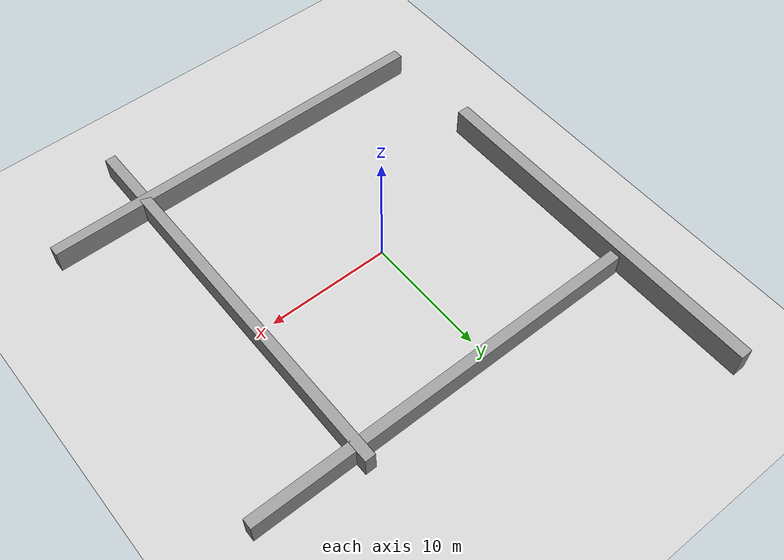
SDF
<sdf version="1.7">
 <world name="default">
  <light name="sun" type="directional">
   <pose>0 0 10 0 -0 0</pose>
   <diffuse>0.8 0.8 0.8 1</diffuse>
   <specular>0.2 0.2 0.2 1</specular>
   <attenuation>
    <range>1000</range>
    <constant>0.9</constant>
    <linear>0.01</linear>
    <quadratic>0.001</quadratic>
   </attenuation>
   <direction>-0.5 0.1 -0.9</direction>
   <spot><inner_angle>0</inner_angle><outer_angle>0</outer_angle><falloff>0</falloff></spot>
  </light>
  <model name="ground_plane">
   <static>1</static>
   <link name="link">
    <collision name="collision">
     <geometry><plane><normal>0 0 1</normal><size>100 100</size></plane></geometry>
     <surface><friction><ode><mu>100</mu><mu2>50</mu2></ode></friction></surface>
    </collision>
    <visual name="visual">
     <cast_shadows>0</cast_shadows>
     <geometry><plane><normal>0 0 1</normal><size>100 100</size></plane></geometry>
     <material>
      <script><uri>file://media/materials/scripts/gazebo.material</uri><name>Gazebo/Grey</name></script>
     </material>
    </visual>
   </link>
  </model>
  <gravity>0 0 -9.8</gravity>
  <magnetic_field>6e-06 2.3e-05 -4.2e-05</magnetic_field>
  <atmosphere type="adiabatic"/>
  <physics type="ode">
   <max_step_size>0.001</max_step_size>
   <real_time_factor>1</real_time_factor>
   <real_time_update_rate>1000</real_time_update_rate>
  </physics>
  <scene><ambient>0.4 0.4 0.4 1</ambient><background>0.7 0.7 0.7 1</background><shadows>1</shadows></scene>
  <spherical_coordinates>
   <surface_model>EARTH_WGS84</surface_model>
   <latitude_deg>0</latitude_deg>
   <longitude_deg>0</longitude_deg>
   <elevation>0</elevation>
   <heading_deg>0</heading_deg>
  </spherical_coordinates>
  <audio><device>default</device></audio>
  <model name="aaa">
   <link name="link_0">
    <inertial>
     <mass>101.05</mass>
     <inertia><ixx>7243.58</ixx><ixy>0</ixy><ixz>0</ixz><iyy>109.806</iyy><iyz>0</iyz><izz>7150.62</izz></inertia>
    </inertial>
    <visual name="visual">
     <geometry><box><size>1 29.1231 3.46984</size></box></geometry>
     <material>
      <lighting>1</lighting>
      <script><uri>file://media/materials/scripts/gazebo.material</uri><name>Gazebo/Grey</name></script>
      <shader type="pixel"/>
     </material>
    </visual>
    <collision name="collision">
     <geometry><box><size>1 29.1231 3.46984</size></box></geometry>
     <surface>
      <friction>
       <ode><mu>1</mu><mu2>1</mu2><fdir1>0 0 0</fdir1><slip1>0</slip1><slip2>0</slip2></ode>
       <torsional>
        <coefficient>1</coefficient>
        <patch_radius>0</patch_radius>
        <surface_radius>0</surface_radius>
        <use_patch_radius>1</use_patch_radius>
        <ode><slip>0</slip></ode>
       </torsional>
      </friction>
      <bounce><restitution_coefficient>0</restitution_coefficient><threshold>1e+06</threshold></bounce>
      <contact>
       <collide_without_contact>0</collide_without_contact>
       <collide_without_contact_bitmask>1</collide_without_contact_bitmask>
       <collide_bitmask>1</collide_bitmask>
       <ode>
        <soft_cfm>0</soft_cfm>
        <soft_erp>0.2</soft_erp>
        <kp>1e+13</kp>
        <kd>1</kd>
        <max_vel>0.01</max_vel>
        <min_depth>0</min_depth>
       </ode>
       <bullet>
        <split_impulse>1</split_impulse>
        <split_impulse_penetration_threshold>-0.01</split_impulse_penetration_threshold>
        <soft_cfm>0</soft_cfm>
        <soft_erp>0.2</soft_erp>
        <kp>1e+13</kp>
        <kd>1</kd>
       </bullet>
      </contact>
     </surface>
    </collision>
   </link>
   <static>0</static>
   <pose>-12.8764 8.90141 0.5 0 -0 0</pose>
  </model>
  <model name="Untitled">
   <link name="link_1">
    <inertial>
     <mass>79.7022</mass>
     <inertia><ixx>58.2295</ixx><ixy>0</ixy><ixz>0</ixz><iyy>7062.34</iyy><iyz>0</iyz><izz>7014.08</izz></inertia>
    </inertial>
    <pose>-2.22953 13.6101 0 0 -0 0</pose>
    <visual name="visual">
     <geometry><box><size>32.4853 0.86663 2.83126</size></box></geometry>
     <material>
      <lighting>1</lighting>
      <script><uri>file://media/materials/scripts/gazebo.material</uri><name>Gazebo/Grey</name></script>
      <shader type="pixel"/>
     </material>
    </visual>
    <collision name="collision">
     <geometry><box><size>32.4853 0.86663 2.83126</size></box></geometry>
     <surface>
      <friction>
       <ode><mu>1</mu><mu2>1</mu2><fdir1>0 0 0</fdir1><slip1>0</slip1><slip2>0</slip2></ode>
       <torsional>
        <coefficient>1</coefficient>
        <patch_radius>0</patch_radius>
        <surface_radius>0</surface_radius>
        <use_patch_radius>1</use_patch_radius>
        <ode><slip>0</slip></ode>
       </torsional>
      </friction>
      <bounce><restitution_coefficient>0</restitution_coefficient><threshold>1e+06</threshold></bounce>
      <contact>
       <collide_without_contact>0</collide_without_contact>
       <collide_without_contact_bitmask>1</collide_without_contact_bitmask>
       <collide_bitmask>1</collide_bitmask>
       <ode>
        <soft_cfm>0</soft_cfm>
        <soft_erp>0.2</soft_erp>
        <kp>1e+13</kp>
        <kd>1</kd>
        <max_vel>0.01</max_vel>
        <min_depth>0</min_depth>
       </ode>
       <bullet>
        <split_impulse>1</split_impulse>
        <split_impulse_penetration_threshold>-0.01</split_impulse_penetration_threshold>
        <soft_cfm>0</soft_cfm>
        <soft_erp>0.2</soft_erp>
        <kp>1e+13</kp>
        <kd>1</kd>
       </bullet>
      </contact>
     </surface>
    </collision>
   </link>
   <link name="link_1_clone">
    <inertial>
     <mass>79.7022</mass>
     <inertia><ixx>58.2295</ixx><ixy>0</ixy><ixz>0</ixz><iyy>7062.34</iyy><iyz>0</iyz><izz>7014.08</izz></inertia>
    </inertial>
    <pose>-3.10046 -12.3479 0 0 -0 0</pose>
    <visual name="visual">
     <geometry><box><size>32.4853 0.86663 2.83126</size></box></geometry>
     <material>
      <lighting>1</lighting>
      <script><uri>file://media/materials/scripts/gazebo.material</uri><name>Gazebo/Grey</name></script>
      <shader type="pixel"/>
     </material>
    </visual>
    <collision name="collision">
     <geometry><box><size>32.4853 0.86663 2.83126</size></box></geometry>
     <surface>
      <friction>
       <ode><mu>1</mu><mu2>1</mu2><fdir1>0 0 0</fdir1><slip1>0</slip1><slip2>0</slip2></ode>
       <torsional>
        <coefficient>1</coefficient>
        <patch_radius>0</patch_radius>
        <surface_radius>0</surface_radius>
        <use_patch_radius>1</use_patch_radius>
        <ode><slip>0</slip></ode>
       </torsional>
      </friction>
      <bounce><restitution_coefficient>0</restitution_coefficient><threshold>1e+06</threshold></bounce>
      <contact>
       <collide_without_contact>0</collide_without_contact>
       <collide_without_contact_bitmask>1</collide_without_contact_bitmask>
       <collide_bitmask>1</collide_bitmask>
       <ode>
        <soft_cfm>0</soft_cfm>
        <soft_erp>0.2</soft_erp>
        <kp>1e+13</kp>
        <kd>1</kd>
        <max_vel>0.01</max_vel>
        <min_depth>0</min_depth>
       </ode>
       <bullet>
        <split_impulse>1</split_impulse>
        <split_impulse_penetration_threshold>-0.01</split_impulse_penetration_threshold>
        <soft_cfm>0</soft_cfm>
        <soft_erp>0.2</soft_erp>
        <kp>1e+13</kp>
        <kd>1</kd>
       </bullet>
      </contact>
     </surface>
    </collision>
   </link>
   <link name="link_1_clone_clone">
    <inertial>
     <mass>79.7022</mass>
     <inertia><ixx>58.2295</ixx><ixy>0</ixy><ixz>0</ixz><iyy>7062.34</iyy><iyz>0</iyz><izz>7014.08</izz></inertia>
    </inertial>
    <pose>5.33002 -1.26223 0 0 -0 1.5708</pose>
    <visual name="visual">
     <geometry><box><size>32.4853 0.86663 2.83126</size></box></geometry>
     <material>
      <lighting>1</lighting>
      <script><uri>file://media/materials/scripts/gazebo.material</uri><name>Gazebo/Grey</name></script>
      <shader type="pixel"><normal_map>__default__</normal_map></shader>
     </material>
    </visual>
    <collision name="collision">
     <geometry><box><size>32.4853 0.86663 2.83126</size></box></geometry>
     <surface>
      <friction>
       <ode><mu>1</mu><mu2>1</mu2><fdir1>0 0 0</fdir1><slip1>0</slip1><slip2>0</slip2></ode>
       <torsional>
        <coefficient>1</coefficient>
        <patch_radius>0</patch_radius>
        <surface_radius>0</surface_radius>
        <use_patch_radius>1</use_patch_radius>
        <ode><slip>0</slip></ode>
       </torsional>
      </friction>
      <bounce><restitution_coefficient>0</restitution_coefficient><threshold>1e+06</threshold></bounce>
      <contact>
       <collide_without_contact>0</collide_without_contact>
       <collide_without_contact_bitmask>1</collide_without_contact_bitmask>
       <collide_bitmask>1</collide_bitmask>
       <ode>
        <soft_cfm>0</soft_cfm>
        <soft_erp>0.2</soft_erp>
        <kp>1e+13</kp>
        <kd>1</kd>
        <max_vel>0.01</max_vel>
        <min_depth>0</min_depth>
       </ode>
       <bullet>
        <split_impulse>1</split_impulse>
        <split_impulse_penetration_threshold>-0.01</split_impulse_penetration_threshold>
        <soft_cfm>0</soft_cfm>
        <soft_erp>0.2</soft_erp>
        <kp>1e+13</kp>
        <kd>1</kd>
       </bullet>
      </contact>
     </surface>
    </collision>
   </link>
   <static>0</static>
   <pose>6.2559 -1.76781 0.5 0 -0 0</pose>
  </model>
 </world>
</sdf>
